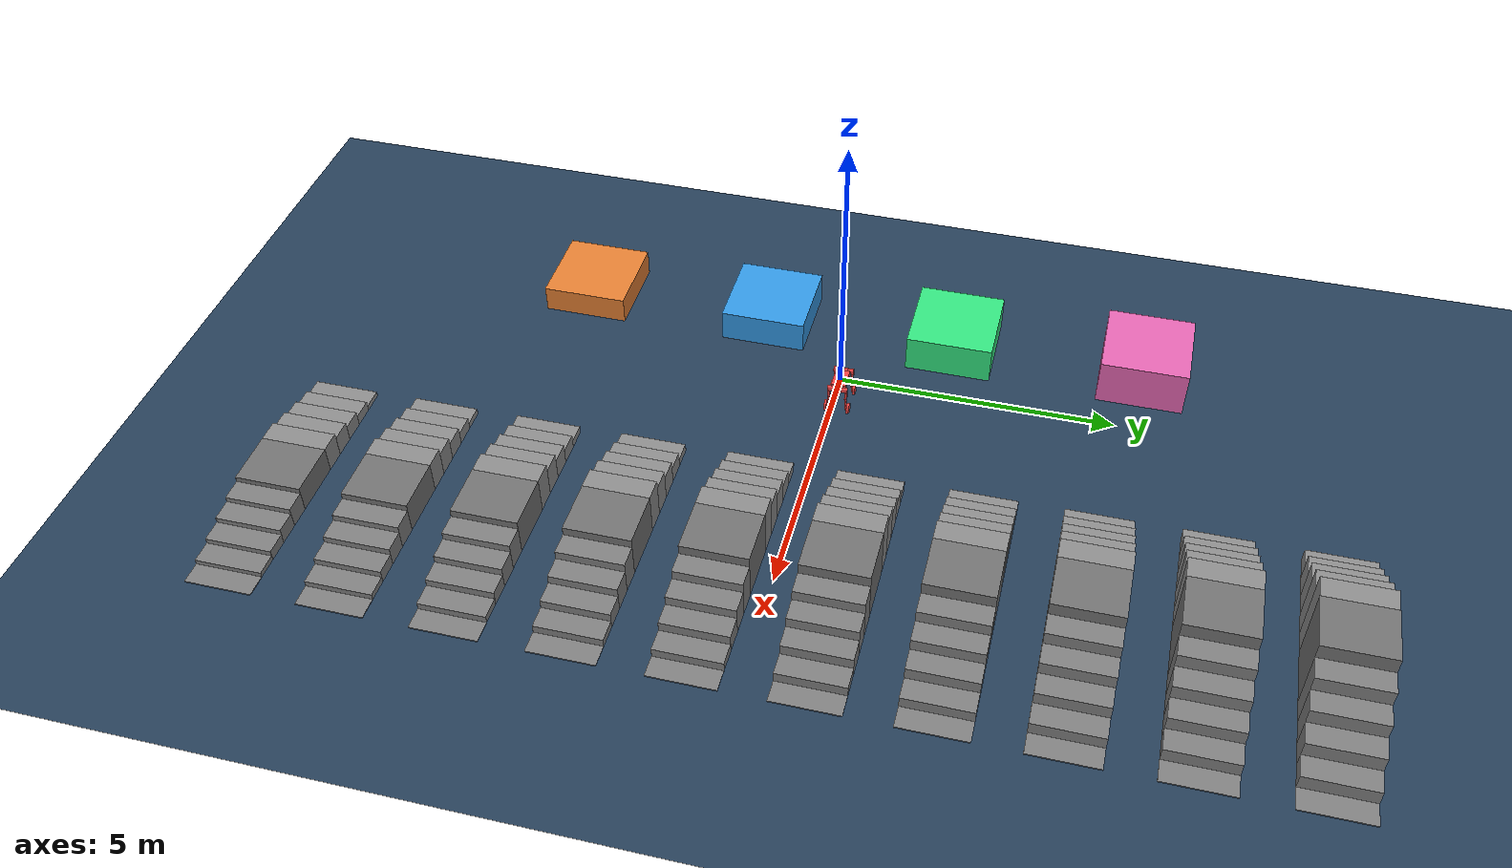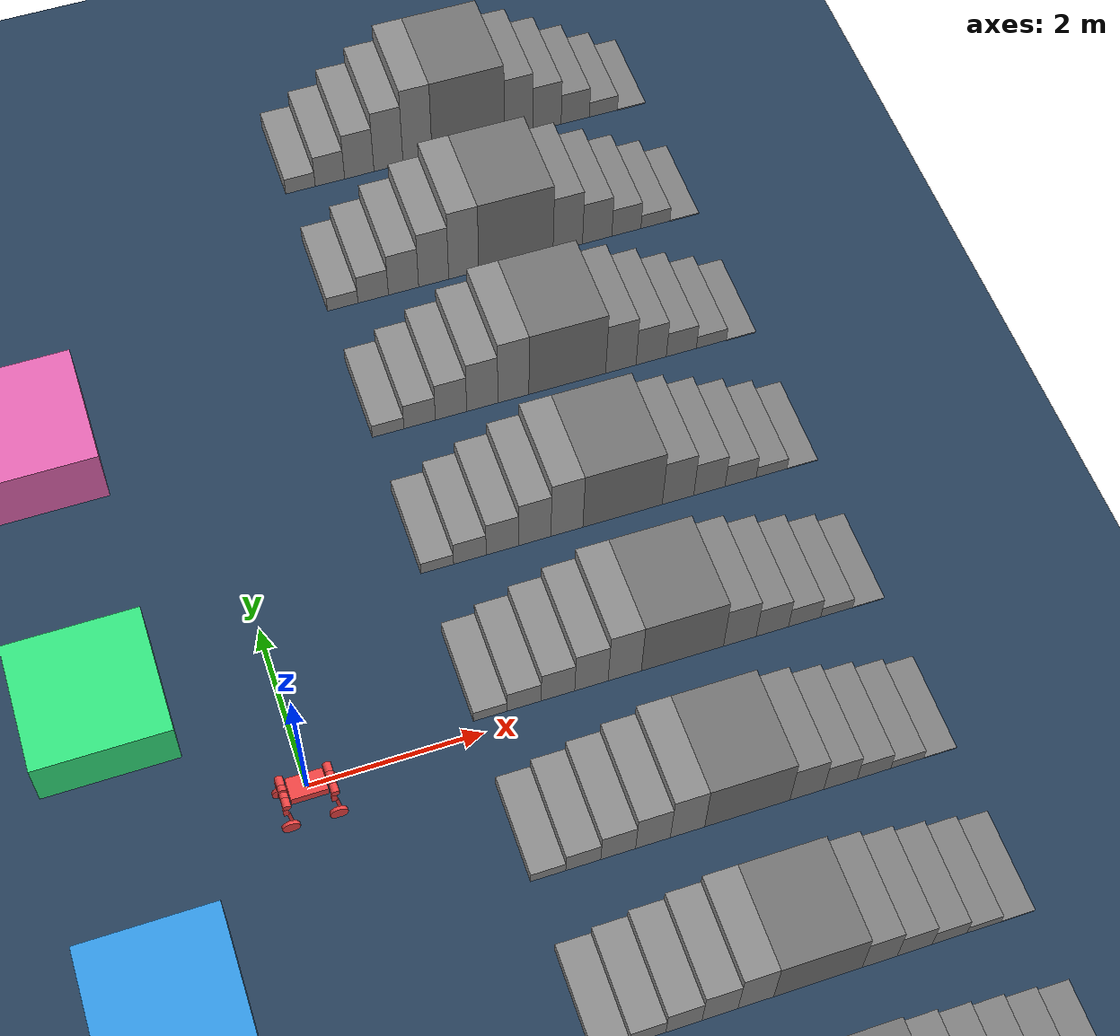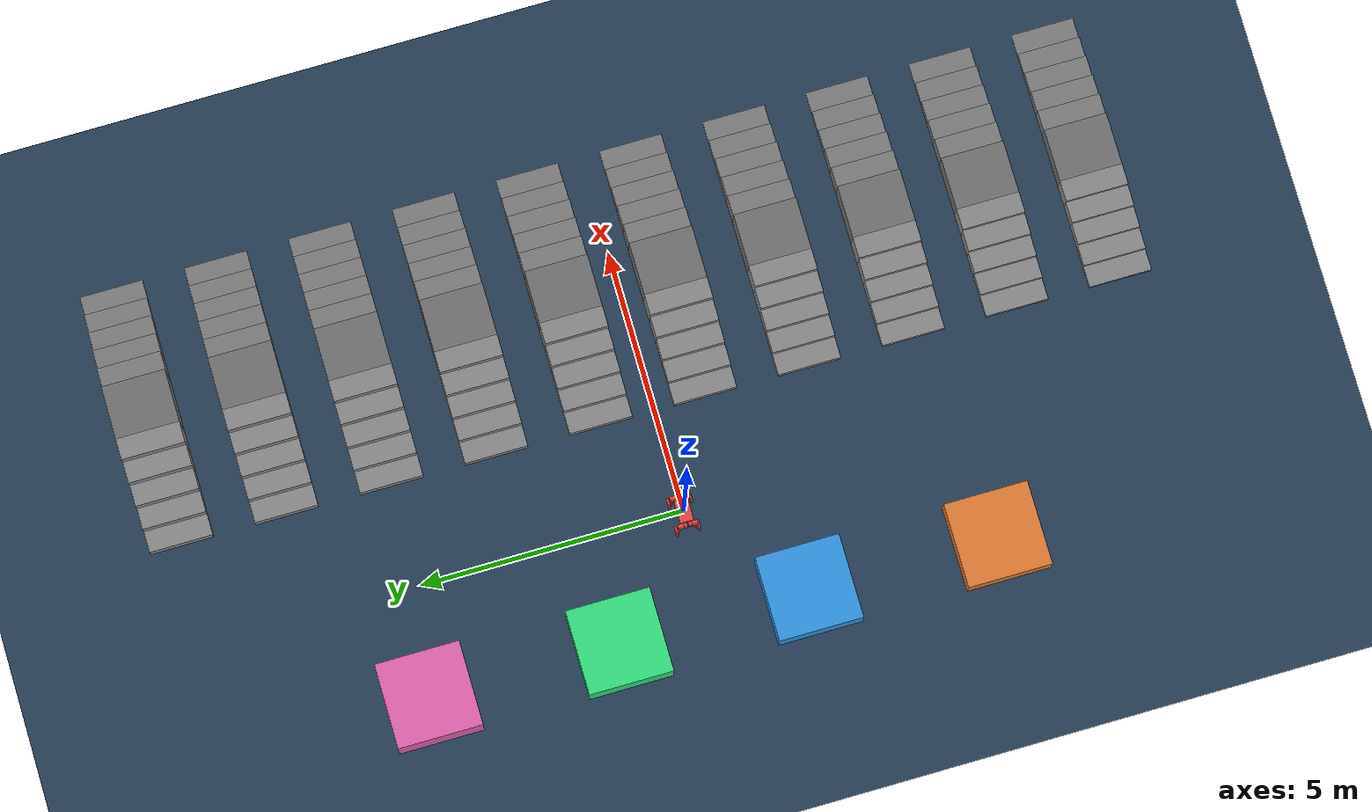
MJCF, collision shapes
<mujoco model="RP_wd">
  <compiler angle="radian" meshdir="meshes/" />
  <option timestep="0.0025" gravity="0 0 -9.81" />
  <asset>
    <mesh name="base_link" file="base_link.STL" />
    <mesh name="LF_ABAD_LINK" file="LF_ABAD_LINK.STL" />
    <mesh name="LF_HIP_LINK" file="LF_HIP_LINK.STL" />
    <mesh name="LF_KENN_LINK" file="LF_KENN_LINK.STL" />
    <mesh name="LF_FOOT_LINK" file="LF_FOOT_LINK.STL" />
    <mesh name="RF_ABAD_LINK" file="RF_ABAD_LINK.STL" />
    <mesh name="RF_HIP_LINK" file="RF_HIP_LINK.STL" />
    <mesh name="RF_KENN_LINK" file="RF_KENN_LINK.STL" />
    <mesh name="RF_FOOT_LINK" file="RF_FOOT_LINK.STL" />
    <mesh name="LB_ABAD_LINK" file="LB_ABAD_LINK.STL" />
    <mesh name="LB_HIP_LINK" file="LB_HIP_LINK.STL" />
    <mesh name="LB_KENN_LINK" file="LB_KENN_LINK.STL" />
    <mesh name="LB_FOOT_LINK" file="LB_FOOT_LINK.STL" />
    <mesh name="RB_ABAD_LINK" file="RB_ABAD_LINK.STL" />
    <mesh name="RB_HIP_LINK" file="RB_HIP_LINK.STL" />
    <mesh name="RB_KENN_LINK" file="RB_KENN_LINK.STL" />
    <mesh name="RB_FOOT_LINK" file="RB_FOOT_LINK.STL" />
    <material name="base_link_mat" rgba="1 1 1 1" specular="0" />
    <material name="LF_ABAD_LINK_mat" rgba="1 1 1 1" specular="0" />
    <material name="LF_HIP_LINK_mat" rgba="1 1 1 1" specular="0" />
    <material name="LF_KENN_LINK_mat" rgba="1 1 1 1" specular="0" />
    <material name="LF_FOOT_LINK_mat" rgba="0.251 0.251 0.251 1" specular="0" />
    <material name="RF_ABAD_LINK_mat" rgba="1 1 1 1" specular="0" />
    <material name="RF_HIP_LINK_mat" rgba="1 1 1 1" specular="0" />
    <material name="RF_KENN_LINK_mat" rgba="1 1 1 1" specular="0" />
    <material name="RF_FOOT_LINK_mat" rgba="0.251 0.251 0.251 1" specular="0" />
    <material name="LB_ABAD_LINK_mat" rgba="1 1 1 1" specular="0" />
    <material name="LB_HIP_LINK_mat" rgba="1 1 1 1" specular="0" />
    <material name="LB_KENN_LINK_mat" rgba="1 1 1 1" specular="0" />
    <material name="LB_FOOT_LINK_mat" rgba="0.251 0.251 0.251 1" specular="0" />
    <material name="RB_ABAD_LINK_mat" rgba="1 1 1 1" specular="0" />
    <material name="RB_HIP_LINK_mat" rgba="1 1 1 1" specular="0" />
    <material name="RB_KENN_LINK_mat" rgba="1 1 1 1" specular="0" />
    <material name="RB_FOOT_LINK_mat" rgba="0.251 0.251 0.251 1" specular="0" />
    <texture name="grid" type="2d" builtin="checker" width="512" height="512" rgb1=".1 .2 .3" rgb2=".2 .3 .4"/>
    <material name="grid" texture="grid" texrepeat="1 1" texuniform="true" reflectance=".2"/>
  </asset>

  <visual>
    <map force="0.1" zfar="30"/>
    <rgba haze="0.15 0.25 0.35 1"/>
    <global offwidth="2560" offheight="1440" elevation="-20" azimuth="120"/>
  </visual>

  <!-- 碰撞分组: 环境=3(碰机器人所有位), 机器人碰撞体=contype1/conaffinity2 -->
  <!-- 机器人自身结构(机身+腿)之间 1&2=0 不碰撞; 与环境 1&3 和 3&2 均碰撞 -->
  <default>
    <geom contype="3" conaffinity="3" />
  </default>

  <worldbody>
    <geom name="floor" size="0 0 .05" type="plane" material="grid" condim="3" pos="0 0 -0.5"/>
    <!-- ===== 50cm 高台 (独立测试平台) ===== -->
    <!-- 尺寸: 1.6m(x) × 1.6m(y) × 0.5m(z), 顶部 z=0.0 (离地 50cm) -->
    <geom name="platform_50cm" type="box" size="0.8 0.8 0.25" pos="-2.0 -5.4 -0.25" rgba="0.9 0.5 0.2 1"/>
    <!-- ===== 60cm 高台 ===== -->
    <!-- 尺寸: 1.6m(x) × 1.6m(y) × 0.6m(z), 顶部 z=0.1 (离地 60cm) -->
    <geom name="platform_60cm" type="box" size="0.8 0.8 0.3" pos="-2.0 -1.8 -0.2" rgba="0.2 0.6 0.9 1"/>
    <!-- ===== 70cm 高台 (与 60cm 并排, 紧挨) ===== -->
    <!-- 尺寸: 1.6m(x) × 1.6m(y) × 0.7m(z), 顶部 z=0.2 (离地 70cm) -->
    <geom name="platform_70cm" type="box" size="0.8 0.8 0.35" pos="-2.0 1.8 -0.15" rgba="0.2 0.9 0.5 1"/>
    <!-- ===== 80cm 高台 (与 70cm 并排, 紧挨) ===== -->
    <!-- 尺寸: 1.6m(x) × 1.6m(y) × 0.8m(z), 顶部 z=0.3 (离地 80cm) -->
    <geom name="platform_80cm" type="box" size="0.8 0.8 0.45" pos="-2.0 5.4 -0.1" rgba="0.9 0.4 0.7 1"/>
    <!-- ===== 10级难度台阶 (并排, 上坡→平台→下坡) ===== -->
    <!-- y=-9到9: L1(h=0.10)~L10(h=0.28), x=[2.0,7.0], 5步+1m平台+5步 -->
    <!-- 难度 1: h=0.10m y=-9 总高=0.50m -->
    <geom name="stair_L1_up1" type="box" size="0.2 0.6 0.0500" pos="2.20 -9 -0.4500" rgba="0.55 0.55 0.55 1"/>
    <geom name="stair_L1_up2" type="box" size="0.2 0.6 0.1000" pos="2.60 -9 -0.4000" rgba="0.55 0.55 0.55 1"/>
    <geom name="stair_L1_up3" type="box" size="0.2 0.6 0.1500" pos="3.00 -9 -0.3500" rgba="0.55 0.55 0.55 1"/>
    <geom name="stair_L1_up4" type="box" size="0.2 0.6 0.2000" pos="3.40 -9 -0.3000" rgba="0.55 0.55 0.55 1"/>
    <geom name="stair_L1_up5" type="box" size="0.2 0.6 0.2500" pos="3.80 -9 -0.2500" rgba="0.55 0.55 0.55 1"/>
    <geom name="stair_L1_plat" type="box" size="0.5 0.6 0.2500" pos="4.50 -9 -0.2500" rgba="0.45 0.45 0.45 1"/>
    <geom name="stair_L1_down1" type="box" size="0.2 0.6 0.2000" pos="5.20 -9 -0.3000" rgba="0.50 0.50 0.50 1"/>
    <geom name="stair_L1_down2" type="box" size="0.2 0.6 0.1500" pos="5.60 -9 -0.3500" rgba="0.50 0.50 0.50 1"/>
    <geom name="stair_L1_down3" type="box" size="0.2 0.6 0.1000" pos="6.00 -9 -0.4000" rgba="0.50 0.50 0.50 1"/>
    <geom name="stair_L1_down4" type="box" size="0.2 0.6 0.0500" pos="6.40 -9 -0.4500" rgba="0.50 0.50 0.50 1"/>
    <geom name="stair_L1_down5" type="box" size="0.2 0.6 0.0100" pos="6.80 -9 -0.5000" rgba="0.50 0.50 0.50 1"/>

    <!-- 难度 2: h=0.12m y=-7 总高=0.60m -->
    <geom name="stair_L2_up1" type="box" size="0.2 0.6 0.0600" pos="2.20 -7 -0.4400" rgba="0.55 0.55 0.55 1"/>
    <geom name="stair_L2_up2" type="box" size="0.2 0.6 0.1200" pos="2.60 -7 -0.3800" rgba="0.55 0.55 0.55 1"/>
    <geom name="stair_L2_up3" type="box" size="0.2 0.6 0.1800" pos="3.00 -7 -0.3200" rgba="0.55 0.55 0.55 1"/>
    <geom name="stair_L2_up4" type="box" size="0.2 0.6 0.2400" pos="3.40 -7 -0.2600" rgba="0.55 0.55 0.55 1"/>
    <geom name="stair_L2_up5" type="box" size="0.2 0.6 0.3000" pos="3.80 -7 -0.2000" rgba="0.55 0.55 0.55 1"/>
    <geom name="stair_L2_plat" type="box" size="0.5 0.6 0.3000" pos="4.50 -7 -0.2000" rgba="0.45 0.45 0.45 1"/>
    <geom name="stair_L2_down1" type="box" size="0.2 0.6 0.2400" pos="5.20 -7 -0.2600" rgba="0.50 0.50 0.50 1"/>
    <geom name="stair_L2_down2" type="box" size="0.2 0.6 0.1800" pos="5.60 -7 -0.3200" rgba="0.50 0.50 0.50 1"/>
    <geom name="stair_L2_down3" type="box" size="0.2 0.6 0.1200" pos="6.00 -7 -0.3800" rgba="0.50 0.50 0.50 1"/>
    <geom name="stair_L2_down4" type="box" size="0.2 0.6 0.0600" pos="6.40 -7 -0.4400" rgba="0.50 0.50 0.50 1"/>
    <geom name="stair_L2_down5" type="box" size="0.2 0.6 0.0100" pos="6.80 -7 -0.5000" rgba="0.50 0.50 0.50 1"/>

    <!-- 难度 3: h=0.14m y=-5 总高=0.70m -->
    <geom name="stair_L3_up1" type="box" size="0.2 0.6 0.0700" pos="2.20 -5 -0.4300" rgba="0.55 0.55 0.55 1"/>
    <geom name="stair_L3_up2" type="box" size="0.2 0.6 0.1400" pos="2.60 -5 -0.3600" rgba="0.55 0.55 0.55 1"/>
    <geom name="stair_L3_up3" type="box" size="0.2 0.6 0.2100" pos="3.00 -5 -0.2900" rgba="0.55 0.55 0.55 1"/>
    <geom name="stair_L3_up4" type="box" size="0.2 0.6 0.2800" pos="3.40 -5 -0.2200" rgba="0.55 0.55 0.55 1"/>
    <geom name="stair_L3_up5" type="box" size="0.2 0.6 0.3500" pos="3.80 -5 -0.1500" rgba="0.55 0.55 0.55 1"/>
    <geom name="stair_L3_plat" type="box" size="0.5 0.6 0.3500" pos="4.50 -5 -0.1500" rgba="0.45 0.45 0.45 1"/>
    <geom name="stair_L3_down1" type="box" size="0.2 0.6 0.2800" pos="5.20 -5 -0.2200" rgba="0.50 0.50 0.50 1"/>
    <geom name="stair_L3_down2" type="box" size="0.2 0.6 0.2100" pos="5.60 -5 -0.2900" rgba="0.50 0.50 0.50 1"/>
    <geom name="stair_L3_down3" type="box" size="0.2 0.6 0.1400" pos="6.00 -5 -0.3600" rgba="0.50 0.50 0.50 1"/>
    <geom name="stair_L3_down4" type="box" size="0.2 0.6 0.0700" pos="6.40 -5 -0.4300" rgba="0.50 0.50 0.50 1"/>
    <geom name="stair_L3_down5" type="box" size="0.2 0.6 0.0100" pos="6.80 -5 -0.5000" rgba="0.50 0.50 0.50 1"/>

    <!-- 难度 4: h=0.16m y=-3 总高=0.80m -->
    <geom name="stair_L4_up1" type="box" size="0.2 0.6 0.0800" pos="2.20 -3 -0.4200" rgba="0.55 0.55 0.55 1"/>
    <geom name="stair_L4_up2" type="box" size="0.2 0.6 0.1600" pos="2.60 -3 -0.3400" rgba="0.55 0.55 0.55 1"/>
    <geom name="stair_L4_up3" type="box" size="0.2 0.6 0.2400" pos="3.00 -3 -0.2600" rgba="0.55 0.55 0.55 1"/>
    <geom name="stair_L4_up4" type="box" size="0.2 0.6 0.3200" pos="3.40 -3 -0.1800" rgba="0.55 0.55 0.55 1"/>
    <geom name="stair_L4_up5" type="box" size="0.2 0.6 0.4000" pos="3.80 -3 -0.1000" rgba="0.55 0.55 0.55 1"/>
    <geom name="stair_L4_plat" type="box" size="0.5 0.6 0.4000" pos="4.50 -3 -0.1000" rgba="0.45 0.45 0.45 1"/>
    <geom name="stair_L4_down1" type="box" size="0.2 0.6 0.3200" pos="5.20 -3 -0.1800" rgba="0.50 0.50 0.50 1"/>
    <geom name="stair_L4_down2" type="box" size="0.2 0.6 0.2400" pos="5.60 -3 -0.2600" rgba="0.50 0.50 0.50 1"/>
    <geom name="stair_L4_down3" type="box" size="0.2 0.6 0.1600" pos="6.00 -3 -0.3400" rgba="0.50 0.50 0.50 1"/>
    <geom name="stair_L4_down4" type="box" size="0.2 0.6 0.0800" pos="6.40 -3 -0.4200" rgba="0.50 0.50 0.50 1"/>
    <geom name="stair_L4_down5" type="box" size="0.2 0.6 0.0100" pos="6.80 -3 -0.5000" rgba="0.50 0.50 0.50 1"/>

    <!-- 难度 5: h=0.18m y=-1 总高=0.90m -->
    <geom name="stair_L5_up1" type="box" size="0.2 0.6 0.0900" pos="2.20 -1 -0.4100" rgba="0.55 0.55 0.55 1"/>
    <geom name="stair_L5_up2" type="box" size="0.2 0.6 0.1800" pos="2.60 -1 -0.3200" rgba="0.55 0.55 0.55 1"/>
    <geom name="stair_L5_up3" type="box" size="0.2 0.6 0.2700" pos="3.00 -1 -0.2300" rgba="0.55 0.55 0.55 1"/>
    <geom name="stair_L5_up4" type="box" size="0.2 0.6 0.3600" pos="3.40 -1 -0.1400" rgba="0.55 0.55 0.55 1"/>
    <geom name="stair_L5_up5" type="box" size="0.2 0.6 0.4500" pos="3.80 -1 -0.0500" rgba="0.55 0.55 0.55 1"/>
    <geom name="stair_L5_plat" type="box" size="0.5 0.6 0.4500" pos="4.50 -1 -0.0500" rgba="0.45 0.45 0.45 1"/>
    <geom name="stair_L5_down1" type="box" size="0.2 0.6 0.3600" pos="5.20 -1 -0.1400" rgba="0.50 0.50 0.50 1"/>
    <geom name="stair_L5_down2" type="box" size="0.2 0.6 0.2700" pos="5.60 -1 -0.2300" rgba="0.50 0.50 0.50 1"/>
    <geom name="stair_L5_down3" type="box" size="0.2 0.6 0.1800" pos="6.00 -1 -0.3200" rgba="0.50 0.50 0.50 1"/>
    <geom name="stair_L5_down4" type="box" size="0.2 0.6 0.0900" pos="6.40 -1 -0.4100" rgba="0.50 0.50 0.50 1"/>
    <geom name="stair_L5_down5" type="box" size="0.2 0.6 0.0100" pos="6.80 -1 -0.5000" rgba="0.50 0.50 0.50 1"/>

    <!-- 难度 6: h=0.20m y=1 总高=1.00m -->
    <geom name="stair_L6_up1" type="box" size="0.2 0.6 0.1000" pos="2.20 1 -0.4000" rgba="0.55 0.55 0.55 1"/>
    <geom name="stair_L6_up2" type="box" size="0.2 0.6 0.2000" pos="2.60 1 -0.3000" rgba="0.55 0.55 0.55 1"/>
    <geom name="stair_L6_up3" type="box" size="0.2 0.6 0.3000" pos="3.00 1 -0.2000" rgba="0.55 0.55 0.55 1"/>
    <geom name="stair_L6_up4" type="box" size="0.2 0.6 0.4000" pos="3.40 1 -0.1000" rgba="0.55 0.55 0.55 1"/>
    <geom name="stair_L6_up5" type="box" size="0.2 0.6 0.5000" pos="3.80 1 0.0000" rgba="0.55 0.55 0.55 1"/>
    <geom name="stair_L6_plat" type="box" size="0.5 0.6 0.5000" pos="4.50 1 0.0000" rgba="0.45 0.45 0.45 1"/>
    <geom name="stair_L6_down1" type="box" size="0.2 0.6 0.4000" pos="5.20 1 -0.1000" rgba="0.50 0.50 0.50 1"/>
    <geom name="stair_L6_down2" type="box" size="0.2 0.6 0.3000" pos="5.60 1 -0.2000" rgba="0.50 0.50 0.50 1"/>
    <geom name="stair_L6_down3" type="box" size="0.2 0.6 0.2000" pos="6.00 1 -0.3000" rgba="0.50 0.50 0.50 1"/>
    <geom name="stair_L6_down4" type="box" size="0.2 0.6 0.1000" pos="6.40 1 -0.4000" rgba="0.50 0.50 0.50 1"/>
    <geom name="stair_L6_down5" type="box" size="0.2 0.6 0.0100" pos="6.80 1 -0.5000" rgba="0.50 0.50 0.50 1"/>

    <!-- 难度 7: h=0.22m y=3 总高=1.10m -->
    <geom name="stair_L7_up1" type="box" size="0.2 0.6 0.1100" pos="2.20 3 -0.3900" rgba="0.55 0.55 0.55 1"/>
    <geom name="stair_L7_up2" type="box" size="0.2 0.6 0.2200" pos="2.60 3 -0.2800" rgba="0.55 0.55 0.55 1"/>
    <geom name="stair_L7_up3" type="box" size="0.2 0.6 0.3300" pos="3.00 3 -0.1700" rgba="0.55 0.55 0.55 1"/>
    <geom name="stair_L7_up4" type="box" size="0.2 0.6 0.4400" pos="3.40 3 -0.0600" rgba="0.55 0.55 0.55 1"/>
    <geom name="stair_L7_up5" type="box" size="0.2 0.6 0.5500" pos="3.80 3 0.0500" rgba="0.55 0.55 0.55 1"/>
    <geom name="stair_L7_plat" type="box" size="0.5 0.6 0.5500" pos="4.50 3 0.0500" rgba="0.45 0.45 0.45 1"/>
    <geom name="stair_L7_down1" type="box" size="0.2 0.6 0.4400" pos="5.20 3 -0.0600" rgba="0.50 0.50 0.50 1"/>
    <geom name="stair_L7_down2" type="box" size="0.2 0.6 0.3300" pos="5.60 3 -0.1700" rgba="0.50 0.50 0.50 1"/>
    <geom name="stair_L7_down3" type="box" size="0.2 0.6 0.2200" pos="6.00 3 -0.2800" rgba="0.50 0.50 0.50 1"/>
    <geom name="stair_L7_down4" type="box" size="0.2 0.6 0.1100" pos="6.40 3 -0.3900" rgba="0.50 0.50 0.50 1"/>
    <geom name="stair_L7_down5" type="box" size="0.2 0.6 0.0100" pos="6.80 3 -0.5000" rgba="0.50 0.50 0.50 1"/>

    <!-- 难度 8: h=0.24m y=5 总高=1.20m -->
    <geom name="stair_L8_up1" type="box" size="0.2 0.6 0.1200" pos="2.20 5 -0.3800" rgba="0.55 0.55 0.55 1"/>
    <geom name="stair_L8_up2" type="box" size="0.2 0.6 0.2400" pos="2.60 5 -0.2600" rgba="0.55 0.55 0.55 1"/>
    <geom name="stair_L8_up3" type="box" size="0.2 0.6 0.3600" pos="3.00 5 -0.1400" rgba="0.55 0.55 0.55 1"/>
    <geom name="stair_L8_up4" type="box" size="0.2 0.6 0.4800" pos="3.40 5 -0.0200" rgba="0.55 0.55 0.55 1"/>
    <geom name="stair_L8_up5" type="box" size="0.2 0.6 0.6000" pos="3.80 5 0.1000" rgba="0.55 0.55 0.55 1"/>
    <geom name="stair_L8_plat" type="box" size="0.5 0.6 0.6000" pos="4.50 5 0.1000" rgba="0.45 0.45 0.45 1"/>
    <geom name="stair_L8_down1" type="box" size="0.2 0.6 0.4800" pos="5.20 5 -0.0200" rgba="0.50 0.50 0.50 1"/>
    <geom name="stair_L8_down2" type="box" size="0.2 0.6 0.3600" pos="5.60 5 -0.1400" rgba="0.50 0.50 0.50 1"/>
    <geom name="stair_L8_down3" type="box" size="0.2 0.6 0.2400" pos="6.00 5 -0.2600" rgba="0.50 0.50 0.50 1"/>
    <geom name="stair_L8_down4" type="box" size="0.2 0.6 0.1200" pos="6.40 5 -0.3800" rgba="0.50 0.50 0.50 1"/>
    <geom name="stair_L8_down5" type="box" size="0.2 0.6 0.0100" pos="6.80 5 -0.5000" rgba="0.50 0.50 0.50 1"/>

    <!-- 难度 9: h=0.26m y=7 总高=1.30m -->
    <geom name="stair_L9_up1" type="box" size="0.2 0.6 0.1300" pos="2.20 7 -0.3700" rgba="0.55 0.55 0.55 1"/>
    <geom name="stair_L9_up2" type="box" size="0.2 0.6 0.2600" pos="2.60 7 -0.2400" rgba="0.55 0.55 0.55 1"/>
    <geom name="stair_L9_up3" type="box" size="0.2 0.6 0.3900" pos="3.00 7 -0.1100" rgba="0.55 0.55 0.55 1"/>
    <geom name="stair_L9_up4" type="box" size="0.2 0.6 0.5200" pos="3.40 7 0.0200" rgba="0.55 0.55 0.55 1"/>
    <geom name="stair_L9_up5" type="box" size="0.2 0.6 0.6500" pos="3.80 7 0.1500" rgba="0.55 0.55 0.55 1"/>
    <geom name="stair_L9_plat" type="box" size="0.5 0.6 0.6500" pos="4.50 7 0.1500" rgba="0.45 0.45 0.45 1"/>
    <geom name="stair_L9_down1" type="box" size="0.2 0.6 0.5200" pos="5.20 7 0.0200" rgba="0.50 0.50 0.50 1"/>
    <geom name="stair_L9_down2" type="box" size="0.2 0.6 0.3900" pos="5.60 7 -0.1100" rgba="0.50 0.50 0.50 1"/>
    <geom name="stair_L9_down3" type="box" size="0.2 0.6 0.2600" pos="6.00 7 -0.2400" rgba="0.50 0.50 0.50 1"/>
    <geom name="stair_L9_down4" type="box" size="0.2 0.6 0.1300" pos="6.40 7 -0.3700" rgba="0.50 0.50 0.50 1"/>
    <geom name="stair_L9_down5" type="box" size="0.2 0.6 0.0100" pos="6.80 7 -0.5000" rgba="0.50 0.50 0.50 1"/>

    <!-- 难度 10: h=0.28m y=9 总高=1.40m -->
    <geom name="stair_L10_up1" type="box" size="0.2 0.6 0.1400" pos="2.20 9 -0.3600" rgba="0.55 0.55 0.55 1"/>
    <geom name="stair_L10_up2" type="box" size="0.2 0.6 0.2800" pos="2.60 9 -0.2200" rgba="0.55 0.55 0.55 1"/>
    <geom name="stair_L10_up3" type="box" size="0.2 0.6 0.4200" pos="3.00 9 -0.0800" rgba="0.55 0.55 0.55 1"/>
    <geom name="stair_L10_up4" type="box" size="0.2 0.6 0.5600" pos="3.40 9 0.0600" rgba="0.55 0.55 0.55 1"/>
    <geom name="stair_L10_up5" type="box" size="0.2 0.6 0.7000" pos="3.80 9 0.2000" rgba="0.55 0.55 0.55 1"/>
    <geom name="stair_L10_plat" type="box" size="0.5 0.6 0.7000" pos="4.50 9 0.2000" rgba="0.45 0.45 0.45 1"/>
    <geom name="stair_L10_down1" type="box" size="0.2 0.6 0.5600" pos="5.20 9 0.0600" rgba="0.50 0.50 0.50 1"/>
    <geom name="stair_L10_down2" type="box" size="0.2 0.6 0.4200" pos="5.60 9 -0.0800" rgba="0.50 0.50 0.50 1"/>
    <geom name="stair_L10_down3" type="box" size="0.2 0.6 0.2800" pos="6.00 9 -0.2200" rgba="0.50 0.50 0.50 1"/>
    <geom name="stair_L10_down4" type="box" size="0.2 0.6 0.1400" pos="6.40 9 -0.3600" rgba="0.50 0.50 0.50 1"/>
    <geom name="stair_L10_down5" type="box" size="0.2 0.6 0.0100" pos="6.80 9 -0.5000" rgba="0.50 0.50 0.50 1"/>

    <light name="spotlight" mode="targetbodycom" target="base_link" diffuse=".8 .8 .8" specular="0.3 0.3 0.3" pos="0 -6 4" cutoff="30"/>
    <body name="base_link" pos="0 0 0">
      <freejoint name="root"/>
      <inertial pos="-0.0064993 -0.0009295 0.0021204" mass="7.4975959" fullinertia="0.0589761 0.1812866 0.2224493 0.0000143 0.000089 0.0004461"/>
      <site name="imu" pos="0 0 0"/>
      <camera name="depth_cam" pos="0.29 0 0.07" quat="-0.6532815 -0.2705981 0.2705981 0.6532815"/>
      <geom pos="0 0 0" group="1" contype="0" conaffinity="0" material="base_link_mat" type="mesh" mesh="base_link" />
      <geom pos="0 0 0" rgba="0.9373 0.2667 0.2667 1" group="3" contype="1" conaffinity="2" type="box" size="0.21 0.13 0.06" />
      <body name="LF_ABAD_LINK" pos="0.26915 0.07715 0.007">
        <joint name="LF_ABAD_JOINT" type="hinge" axis="1 0 0" limited="true" range="-1 1" damping="0" frictionloss="0.02" armature="0.02"/>
        <inertial pos="-0.0009598 -0.0317346 0" mass="0.8603295" fullinertia="0.0006379 0.0007923 0.0006889 0.0000452 0 0"/>
        <geom pos="0 0 0" group="1" contype="0" conaffinity="0" material="LF_ABAD_LINK_mat" type="mesh" mesh="LF_ABAD_LINK" />
        <geom pos="0 -0.034 0" quat="0.7071068 0.7071068 0 0" rgba="0.9373 0.2667 0.2667 1" group="3" contype="1" conaffinity="2" type="cylinder" size="0.048 0.032" />
        <body name="LF_HIP_LINK" pos="0 0.0674 0">
          <joint name="LF_HIP_JOINT" type="hinge" axis="0 1 0" limited="true" range="-1.57 3.49" damping="0" frictionloss="0.02" armature="0.02"/>
          <inertial pos="-0.0028159 -0.0294115 -0.0241435" mass="1.3307055" fullinertia="0.0057683 0.0055296 0.0015633 0.0001375 -0.0003075 0.000976"/>
          <geom pos="0 0 0" group="1" contype="0" conaffinity="0" material="LF_HIP_LINK_mat" type="mesh" mesh="LF_HIP_LINK" />
          <geom pos="0 -0.014 0" quat="0.7071068 0.7071068 0 0" rgba="0.9373 0.2667 0.2667 1" group="3" contype="1" conaffinity="2" type="cylinder" size="0.048 0.055" />
          <geom pos="-0.02 0.016 -0.12" quat="0.7071068 0.7071068 0 0" rgba="0.9373 0.2667 0.2667 1" group="3" contype="1" conaffinity="2" type="box" size="0.03 0.07 0.02" />
          <body name="LF_KENN_LINK" pos="0 0.011764 -0.2125">
            <joint name="LF_KENN_JOINT" type="hinge" axis="0 1 0" limited="true" range="-2.7 -0.83" damping="0" frictionloss="0.02" armature="0.02"/>
            <inertial pos="0.0039019 0.0253379 -0.1888436" mass="0.636513" fullinertia="0.0027405 0.002845 0.0003994 0.0000325 -0.0001755 0.0003959"/>
            <geom pos="0 0 0" group="1" contype="0" conaffinity="0" material="LF_KENN_LINK_mat" type="mesh" mesh="LF_KENN_LINK" />
            <geom pos="0.016 0.006 -0.08" quat="0.9957034 0.0608998 -0.0696263 0.0042585" rgba="0.9373 0.2667 0.2667 1" group="3" contype="1" conaffinity="2" type="cylinder" size="0.02 0.09" />
            <geom pos="0 0.021 -0.22" quat="0.7071068 0.7071068 0 0" rgba="0.9373 0.2667 0.2667 1" group="3" contype="1" conaffinity="2" type="cylinder" size="0.045 0.015" />
            <body name="LF_FOOT_LINK" pos="0 0.052 -0.22006">
              <joint name="LF_FOOT_JOINT" type="hinge" axis="0 1 0" damping="0" frictionloss="0.01" armature="0.01"/>
              <inertial pos="-0.0000842 0.0012423 -0.0000301" mass="0.4354423" fullinertia="0.0012979 0.0024981 0.001296 0 0.0000008 0"/>
              <geom pos="0 0 0" group="1" contype="0" conaffinity="0" material="LF_FOOT_LINK_mat" type="mesh" mesh="LF_FOOT_LINK" />
              <geom pos="0.0000371 0.003 -0.0000005" quat="0.7071068 0.7071068 0 0" rgba="0.9373 0.2667 0.2667 1" group="3" contype="1" conaffinity="2" type="cylinder" size="0.1025 0.02" />
            </body>
          </body>
        </body>
      </body>
      <body name="RF_ABAD_LINK" pos="0.26915 -0.07715 0.007">
        <joint name="RF_ABAD_JOINT" type="hinge" axis="1 0 0" limited="true" range="-1 1" damping="0" frictionloss="0.02" armature="0.02"/>
        <inertial pos="-0.0009598 0.0317346 0" mass="0.8603295" fullinertia="0.0006379 0.0007923 0.0006889 -0.0000452 0 0"/>
        <geom pos="0 0 0" group="1" contype="0" conaffinity="0" material="RF_ABAD_LINK_mat" type="mesh" mesh="RF_ABAD_LINK" />
        <geom pos="0 0.034 0" quat="0.7071068 -0.7071068 0 0" rgba="0.9373 0.2667 0.2667 1" group="3" contype="1" conaffinity="2" type="cylinder" size="0.048 0.032" />
        <body name="RF_HIP_LINK" pos="0 -0.0674 0">
          <joint name="RF_HIP_JOINT" type="hinge" axis="0 1 0" limited="true" range="-1.57 3.49" damping="0" frictionloss="0.02" armature="0.02"/>
          <inertial pos="-0.0028159 0.0294115 -0.0241435" mass="1.3307055" fullinertia="0.0057683 0.0055296 0.0015633 -0.0001375 -0.0003075 -0.000976"/>
          <geom pos="0 0 0" group="1" contype="0" conaffinity="0" material="RF_HIP_LINK_mat" type="mesh" mesh="RF_HIP_LINK" />
          <geom pos="0 0.014 0" quat="0.7071068 -0.7071068 0 0" rgba="0.9373 0.2667 0.2667 1" group="3" contype="1" conaffinity="2" type="cylinder" size="0.048 0.055" />
          <geom pos="-0.02 -0.016 -0.12" quat="0.7071068 -0.7071068 0 0" rgba="0.9373 0.2667 0.2667 1" group="3" contype="1" conaffinity="2" type="box" size="0.03 0.07 0.02" />
          <body name="RF_KENN_LINK" pos="0 -0.011764 -0.2125">
            <joint name="RF_KENN_JOINT" type="hinge" axis="0 1 0" limited="true" range="-2.7 -0.83" damping="0" frictionloss="0.02" armature="0.02"/>
            <inertial pos="0.0039019 -0.0253379 -0.1888436" mass="0.636513" fullinertia="0.0027405 0.002845 0.0003994 -0.0000325 -0.0001755 -0.0003959"/>
            <geom pos="0 0 0" group="1" contype="0" conaffinity="0" material="RF_KENN_LINK_mat" type="mesh" mesh="RF_KENN_LINK" />
            <geom pos="0.016 -0.006 -0.08" quat="0.9957034 -0.0608998 -0.0696263 -0.0042585" rgba="0.9373 0.2667 0.2667 1" group="3" contype="1" conaffinity="2" type="cylinder" size="0.02 0.09" />
            <geom pos="0 -0.021 -0.22" quat="0.7071068 -0.7071068 0 0" rgba="0.9373 0.2667 0.2667 1" group="3" contype="1" conaffinity="2" type="cylinder" size="0.045 0.015" />
            <body name="RF_FOOT_LINK" pos="0 -0.052 -0.22006">
              <joint name="RF_FOOT_JOINT" type="hinge" axis="0 1 0" damping="0" frictionloss="0.01" armature="0.01"/>
              <inertial pos="-0.0000842 -0.0012423 -0.0000301" mass="0.4354423" fullinertia="0.0012979 0.0024981 0.001296 0 0.0000008 0"/>
              <geom pos="0 0 0" group="1" contype="0" conaffinity="0" material="RF_FOOT_LINK_mat" type="mesh" mesh="RF_FOOT_LINK" />
              <geom pos="0.0000371 -0.003 -0.0000005" quat="0.7071068 -0.7071068 0 0" rgba="0.9373 0.2667 0.2667 1" group="3" contype="1" conaffinity="2" type="cylinder" size="0.1025 0.02" />
            </body>
          </body>
        </body>
      </body>
      <body name="LB_ABAD_LINK" pos="-0.26885 0.07715 0.007">
        <joint name="LB_ABAD_JOINT" type="hinge" axis="1 0 0" limited="true" range="-1 1" damping="0" frictionloss="0.02" armature="0.02"/>
        <inertial pos="0.0009598 -0.0317346 0" mass="0.8603295" fullinertia="0.0006379 0.0007923 0.0006889 -0.0000452 0 0"/>
        <geom pos="0 0 0" group="1" contype="0" conaffinity="0" material="LB_ABAD_LINK_mat" type="mesh" mesh="LB_ABAD_LINK" />
        <geom pos="0 -0.034 0" quat="0.7071068 0.7071068 0 0" rgba="0.9373 0.2667 0.2667 1" group="3" contype="1" conaffinity="2" type="cylinder" size="0.048 0.032" />
        <body name="LB_HIP_LINK" pos="0 0.0674 0">
          <joint name="LB_HIP_JOINT" type="hinge" axis="0 1 0" limited="true" range="-1.57 3.49" damping="0" frictionloss="0.02" armature="0.02"/>
          <inertial pos="-0.0027582 -0.0294115 -0.0240635" mass="1.3307055" fullinertia="0.0057764 0.0055352 0.0015608 0.0001403 -0.0003087 0.0009799"/>
          <geom pos="0 0 0" group="1" contype="0" conaffinity="0" material="LB_HIP_LINK_mat" type="mesh" mesh="LB_HIP_LINK" />
          <geom pos="0 -0.014 0" quat="0.7071068 0.7071068 0 0" rgba="0.9373 0.2667 0.2667 1" group="3" contype="1" conaffinity="2" type="cylinder" size="0.048 0.055" />
          <geom pos="-0.02 0.016 -0.12" quat="0.7071068 0.7071068 0 0" rgba="0.9373 0.2667 0.2667 1" group="3" contype="1" conaffinity="2" type="box" size="0.03 0.07 0.0200005" />
          <body name="LB_KENN_LINK" pos="0 0.011764 -0.2125">
            <joint name="LB_KENN_JOINT" type="hinge" axis="0 1 0" limited="true" range="-2.7 -0.83" damping="0" frictionloss="0.02" armature="0.02"/>
            <inertial pos="0.0039019 0.0253379 -0.1888436" mass="0.636513" fullinertia="0.0027405 0.002845 0.0003994 0.0000325 -0.0001755 0.0003959"/>
            <geom pos="0 0 0" group="1" contype="0" conaffinity="0" material="LB_KENN_LINK_mat" type="mesh" mesh="LB_KENN_LINK" />
            <geom pos="0.016 0.006 -0.08" quat="0.9957034 0.0608998 -0.0696263 0.0042585" rgba="0.9373 0.2667 0.2667 1" group="3" contype="1" conaffinity="2" type="cylinder" size="0.02 0.09" />
            <geom pos="0 0.021 -0.22" quat="0.7071068 0.7071068 0 0" rgba="0.9373 0.2667 0.2667 1" group="3" contype="1" conaffinity="2" type="cylinder" size="0.045 0.015" />
            <body name="LB_FOOT_LINK" pos="0 0.052 -0.22006">
              <joint name="LB_FOOT_JOINT" type="hinge" axis="0 1 0" damping="0" frictionloss="0.01" armature="0.01"/>
              <inertial pos="-0.0000548 0.0044286 -0.0000713" mass="0.4354423" fullinertia="0.0012966 0.0024981 0.0012973 0 0.0000012 0"/>
              <geom pos="0 0 0" group="1" contype="0" conaffinity="0" material="LB_FOOT_LINK_mat" type="mesh" mesh="LB_FOOT_LINK" />
              <geom pos="0.0000371 0.003 -0.0000005" quat="0.7071068 0.7071068 0 0" rgba="0.9373 0.2667 0.2667 1" group="3" contype="1" conaffinity="2" type="cylinder" size="0.1025 0.02" />
            </body>
          </body>
        </body>
      </body>
      <body name="RB_ABAD_LINK" pos="-0.26885 -0.07715 0.007">
        <joint name="RB_ABAD_JOINT" type="hinge" axis="1 0 0" limited="true" range="-1 1" damping="0" frictionloss="0.02" armature="0.02"/>
        <inertial pos="0.0009598 0.0317346 0" mass="0.8603295" fullinertia="0.0006379 0.0007923 0.0006889 0.0000452 0 0"/>
        <geom pos="0 0 0" group="1" contype="0" conaffinity="0" material="RB_ABAD_LINK_mat" type="mesh" mesh="RB_ABAD_LINK" />
        <geom pos="0 0.034 0" quat="0.7071068 -0.7071068 0 0" rgba="0.9373 0.2667 0.2667 1" group="3" contype="1" conaffinity="2" type="cylinder" size="0.048 0.032" />
        <body name="RB_HIP_LINK" pos="0 -0.0674 0">
          <joint name="RB_HIP_JOINT" type="hinge" axis="0 1 0" limited="true" range="-1.57 3.49" damping="0" frictionloss="0.02" armature="0.02"/>
          <inertial pos="-0.0027582 0.0294115 -0.0240635" mass="1.3307055" fullinertia="0.0057764 0.0055352 0.0015608 -0.0001403 -0.0003087 -0.0009799"/>
          <geom pos="0 0 0" group="1" contype="0" conaffinity="0" material="RB_HIP_LINK_mat" type="mesh" mesh="RB_HIP_LINK" />
          <geom pos="0 0.014 0" quat="0.7071068 -0.7071068 0 0" rgba="0.9373 0.2667 0.2667 1" group="3" contype="1" conaffinity="2" type="cylinder" size="0.048 0.055" />
          <geom pos="-0.02 -0.016 -0.12" quat="0.7071068 -0.7071068 0 0" rgba="0.9373 0.2667 0.2667 1" group="3" contype="1" conaffinity="2" type="box" size="0.03 0.07 0.0200005" />
          <body name="RB_KENN_LINK" pos="0 -0.011764 -0.2125">
            <joint name="RB_KENN_JOINT" type="hinge" axis="0 1 0" limited="true" range="-2.7 -0.83" damping="0" frictionloss="0.02" armature="0.02"/>
            <inertial pos="0.0039019 -0.0253379 -0.1888436" mass="0.636513" fullinertia="0.0027405 0.002845 0.0003994 -0.0000325 -0.0001755 -0.0003959"/>
            <geom pos="0 0 0" group="1" contype="0" conaffinity="0" material="RB_KENN_LINK_mat" type="mesh" mesh="RB_KENN_LINK" />
            <geom pos="0.016 -0.006 -0.08" quat="0.9957034 -0.0608998 -0.0696263 -0.0042585" rgba="0.9373 0.2667 0.2667 1" group="3" contype="1" conaffinity="2" type="cylinder" size="0.02 0.09" />
            <geom pos="0 -0.021 -0.22" quat="0.7071068 -0.7071068 0 0" rgba="0.9373 0.2667 0.2667 1" group="3" contype="1" conaffinity="2" type="cylinder" size="0.045 0.015" />
            <body name="RB_FOOT_LINK" pos="0 -0.052 -0.22006">
              <joint name="RB_FOOT_JOINT" type="hinge" axis="0 1 0" damping="0" frictionloss="0.01" armature="0.01"/>
              <inertial pos="-0.0000548 -0.0044286 -0.0000713" mass="0.4354423" fullinertia="0.0012966 0.0024981 0.0012973 0 0.0000012 0"/>
              <geom pos="0 0 0" group="1" contype="0" conaffinity="0" material="RB_FOOT_LINK_mat" type="mesh" mesh="RB_FOOT_LINK" />
              <geom pos="0.0000371 -0.003 -0.0000005" quat="0.7071068 -0.7071068 0 0" rgba="0.9373 0.2667 0.2667 1" group="3" contype="1" conaffinity="2" type="cylinder" size="0.1025 0.02" />
            </body>
          </body>
        </body>
      </body>
    </body>
  </worldbody>
  <sensor>
    <jointpos name="LF_ABAD_JOINT_pos" joint="LF_ABAD_JOINT" />
    <jointpos name="LF_HIP_JOINT_pos" joint="LF_HIP_JOINT" />
    <jointpos name="LF_KENN_JOINT_pos" joint="LF_KENN_JOINT" />
    <jointpos name="LF_FOOT_JOINT_pos" joint="LF_FOOT_JOINT" />
    <jointpos name="RF_ABAD_JOINT_pos" joint="RF_ABAD_JOINT" />
    <jointpos name="RF_HIP_JOINT_pos" joint="RF_HIP_JOINT" />
    <jointpos name="RF_KENN_JOINT_pos" joint="RF_KENN_JOINT" />
    <jointpos name="RF_FOOT_JOINT_pos" joint="RF_FOOT_JOINT" />
    <jointpos name="LB_ABAD_JOINT_pos" joint="LB_ABAD_JOINT" />
    <jointpos name="LB_HIP_JOINT_pos" joint="LB_HIP_JOINT" />
    <jointpos name="LB_KENN_JOINT_pos" joint="LB_KENN_JOINT" />
    <jointpos name="LB_FOOT_JOINT_pos" joint="LB_FOOT_JOINT" />
    <jointpos name="RB_ABAD_JOINT_pos" joint="RB_ABAD_JOINT" />
    <jointpos name="RB_HIP_JOINT_pos" joint="RB_HIP_JOINT" />
    <jointpos name="RB_KENN_JOINT_pos" joint="RB_KENN_JOINT" />
    <jointpos name="RB_FOOT_JOINT_pos" joint="RB_FOOT_JOINT" />
    <jointvel name="LF_ABAD_JOINT_vel" joint="LF_ABAD_JOINT" />
    <jointvel name="LF_HIP_JOINT_vel" joint="LF_HIP_JOINT" />
    <jointvel name="LF_KENN_JOINT_vel" joint="LF_KENN_JOINT" />
    <jointvel name="LF_FOOT_JOINT_vel" joint="LF_FOOT_JOINT" />
    <jointvel name="RF_ABAD_JOINT_vel" joint="RF_ABAD_JOINT" />
    <jointvel name="RF_HIP_JOINT_vel" joint="RF_HIP_JOINT" />
    <jointvel name="RF_KENN_JOINT_vel" joint="RF_KENN_JOINT" />
    <jointvel name="RF_FOOT_JOINT_vel" joint="RF_FOOT_JOINT" />
    <jointvel name="LB_ABAD_JOINT_vel" joint="LB_ABAD_JOINT" />
    <jointvel name="LB_HIP_JOINT_vel" joint="LB_HIP_JOINT" />
    <jointvel name="LB_KENN_JOINT_vel" joint="LB_KENN_JOINT" />
    <jointvel name="LB_FOOT_JOINT_vel" joint="LB_FOOT_JOINT" />
    <jointvel name="RB_ABAD_JOINT_vel" joint="RB_ABAD_JOINT" />
    <jointvel name="RB_HIP_JOINT_vel" joint="RB_HIP_JOINT" />
    <jointvel name="RB_KENN_JOINT_vel" joint="RB_KENN_JOINT" />
    <jointvel name="RB_FOOT_JOINT_vel" joint="RB_FOOT_JOINT" />
    <framequat name="imu_quat" objtype="site" objname="imu"/>
    <gyro name="imu_gyro" site="imu"/>
  </sensor>
  <actuator>
    <position name="LF_ABAD_JOINT_servo" joint="LF_ABAD_JOINT" kp="150" kv="3" forcelimited="true" forcerange="-42 42" />
    <position name="LF_HIP_JOINT_servo" joint="LF_HIP_JOINT" kp="150" kv="3" forcelimited="true" forcerange="-42 42" />
    <position name="LF_KENN_JOINT_servo" joint="LF_KENN_JOINT" kp="150" kv="3" forcelimited="true" forcerange="-42 42" />
    <velocity name="LF_FOOT_JOINT_servo" joint="LF_FOOT_JOINT" kv="3" forcelimited="true" forcerange="-17 17" ctrllimited="true" ctrlrange="-42 42" />
    <position name="RF_ABAD_JOINT_servo" joint="RF_ABAD_JOINT" kp="150" kv="3" forcelimited="true" forcerange="-42 42" />
    <position name="RF_HIP_JOINT_servo" joint="RF_HIP_JOINT" kp="150" kv="3" forcelimited="true" forcerange="-42 42" />
    <position name="RF_KENN_JOINT_servo" joint="RF_KENN_JOINT" kp="150" kv="3" forcelimited="true" forcerange="-42 42" />
    <velocity name="RF_FOOT_JOINT_servo" joint="RF_FOOT_JOINT" kv="3" forcelimited="true" forcerange="-17 17" ctrllimited="true" ctrlrange="-42 42" />
    <position name="LB_ABAD_JOINT_servo" joint="LB_ABAD_JOINT" kp="150" kv="3" forcelimited="true" forcerange="-42 42" />
    <position name="LB_HIP_JOINT_servo" joint="LB_HIP_JOINT" kp="150" kv="3" forcelimited="true" forcerange="-42 42" />
    <position name="LB_KENN_JOINT_servo" joint="LB_KENN_JOINT" kp="150" kv="3" forcelimited="true" forcerange="-42 42" />
    <velocity name="LB_FOOT_JOINT_servo" joint="LB_FOOT_JOINT" kv="3" forcelimited="true" forcerange="-17 17" ctrllimited="true" ctrlrange="-42 42" />
    <position name="RB_ABAD_JOINT_servo" joint="RB_ABAD_JOINT" kp="150" kv="3" forcelimited="true" forcerange="-42 42" />
    <position name="RB_HIP_JOINT_servo" joint="RB_HIP_JOINT" kp="150" kv="3" forcelimited="true" forcerange="-42 42" />
    <position name="RB_KENN_JOINT_servo" joint="RB_KENN_JOINT" kp="150" kv="3" forcelimited="true" forcerange="-42 42" />
    <velocity name="RB_FOOT_JOINT_servo" joint="RB_FOOT_JOINT" kv="3" forcelimited="true" forcerange="-17 17" ctrllimited="true" ctrlrange="-42 42" />
  </actuator>
</mujoco>
